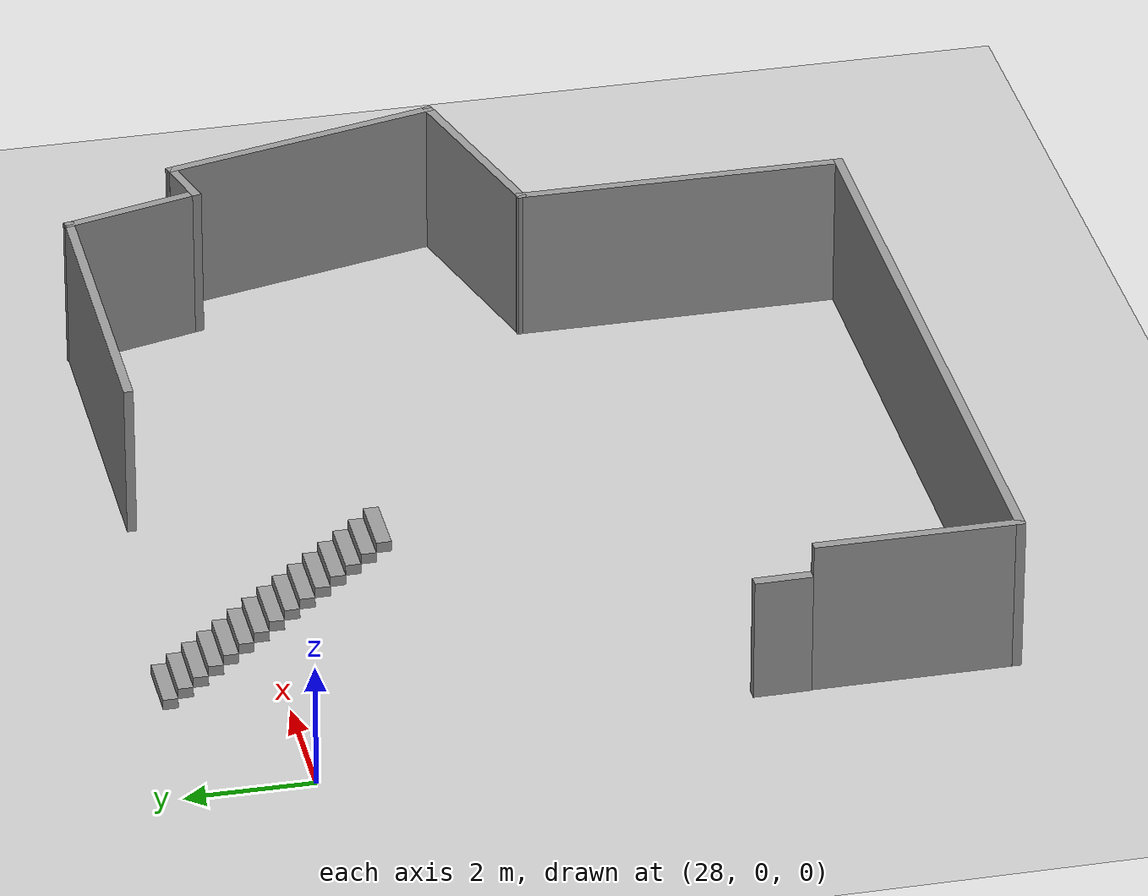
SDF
<sdf version="1.6">
 <world name="default">
  <model name="ground_plane">
   <static>1</static>
   <link name="link">
    <collision name="collision">
     <geometry><plane><normal>0 0 1</normal><size>100 100</size></plane></geometry>
     <surface>
      <contact><collide_bitmask>65535</collide_bitmask></contact>
      <friction><ode><mu>100</mu><mu2>50</mu2></ode></friction>
     </surface>
    </collision>
    <visual name="visual">
     <cast_shadows>0</cast_shadows>
     <geometry><plane><normal>0 0 1</normal><size>100 100</size></plane></geometry>
     <material>
      <script><uri>file://media/materials/scripts/gazebo.material</uri><name>Gazebo/Grey</name></script>
     </material>
    </visual>
   </link>
  </model>
  <model name="111A">
   <pose>36.1241 -4.73317 0 0 -0 0</pose>
   <link name="Door_1">
    <collision name="Door_1_Collision">
     <geometry><box><size>0.9 0.17 2</size></box></geometry>
     <pose>0 0 1 0 -0 0</pose>
    </collision>
    <visual name="Door_1_Visual">
     <pose>0 0 1 0 -0 0</pose>
     <geometry><box><size>0.9 0.17 2</size></box></geometry>
     <material>
      <script><uri>file://media/materials/scripts/gazebo.material</uri><name>Gazebo/Grey</name></script>
     </material>
    </visual>
    <pose>-7.13799 -2.54099 0 0 0 -1.56132</pose>
   </link>
   <link name="Wall_17">
    <collision name="Wall_17_Collision">
     <geometry><box><size>3.25 0.15 2.5</size></box></geometry>
     <pose>0 0 1.25 0 -0 0</pose>
    </collision>
    <visual name="Wall_17_Visual">
     <pose>0 0 1.25 0 -0 0</pose>
     <geometry><box><size>3.25 0.15 2.5</size></box></geometry>
     <material>
      <script><uri>file://media/materials/scripts/gazebo.material</uri><name>Gazebo/Grey</name></script>
      <ambient>1 1 1 1</ambient>
     </material>
     <meta><layer>0</layer></meta>
    </visual>
    <pose>-7.13342 -4.61905 0 0 -0 -1.5708</pose>
   </link>
   <link name="Wall_18">
    <collision name="Wall_18_Collision">
     <geometry><box><size>11.335 0.15 2.5</size></box></geometry>
     <pose>0 0 1.25 0 -0 0</pose>
    </collision>
    <visual name="Wall_18_Visual">
     <pose>0 0 1.25 0 -0 0</pose>
     <geometry><box><size>11.335 0.15 2.5</size></box></geometry>
     <material>
      <script><uri>file://media/materials/scripts/gazebo.material</uri><name>Gazebo/Grey</name></script>
      <ambient>1 1 1 1</ambient>
     </material>
     <meta><layer>0</layer></meta>
    </visual>
    <pose>-1.54142 -6.16905 0 0 -0 0</pose>
   </link>
   <link name="Wall_19">
    <collision name="Wall_19_Collision">
     <geometry><box><size>5.334 0.15 2.5</size></box></geometry>
     <pose>0 0 1.25 0 -0 0</pose>
    </collision>
    <visual name="Wall_19_Visual">
     <pose>0 0 1.25 0 -0 0</pose>
     <geometry><box><size>5.334 0.15 2.5</size></box></geometry>
     <material>
      <script><uri>file://media/materials/scripts/gazebo.material</uri><name>Gazebo/Grey</name></script>
      <ambient>1 1 1 1</ambient>
     </material>
     <meta><layer>0</layer></meta>
    </visual>
    <pose>4.05058 -3.57705 0 0 -0 1.5708</pose>
   </link>
   <link name="Wall_20">
    <collision name="Wall_20_Collision">
     <geometry><box><size>3.334 0.15 2.5</size></box></geometry>
     <pose>0 0 1.25 0 -0 0</pose>
    </collision>
    <visual name="Wall_20_Visual">
     <pose>0 0 1.25 0 -0 0</pose>
     <geometry><box><size>3.334 0.15 2.5</size></box></geometry>
     <material>
      <script><uri>file://media/materials/scripts/gazebo.material</uri><name>Gazebo/Grey</name></script>
      <ambient>1 1 1 1</ambient>
     </material>
     <meta><layer>0</layer></meta>
    </visual>
    <pose>5.58352 -0.555436 0 0 -0 0.273245</pose>
   </link>
   <link name="Wall_21">
    <collision name="Wall_21_Collision">
     <geometry><box><size>4.667 0.15 2.5</size></box></geometry>
     <pose>0 0 1.25 0 -0 0</pose>
    </collision>
    <visual name="Wall_21_Visual">
     <pose>0 0 1.25 0 -0 0</pose>
     <geometry><box><size>4.667 0.15 2.5</size></box></geometry>
     <material>
      <script><uri>file://media/materials/scripts/gazebo.material</uri><name>Gazebo/Grey</name></script>
      <ambient>1 1 1 1</ambient>
     </material>
     <meta><layer>0</layer></meta>
    </visual>
    <pose>6.58144 2.06839 0 0 -0 1.80996</pose>
   </link>
   <link name="Wall_22">
    <collision name="Wall_22_Collision">
     <geometry><box><size>1 0.15 2.5</size></box></geometry>
     <pose>0 0 1.25 0 -0 0</pose>
    </collision>
    <visual name="Wall_22_Visual">
     <pose>0 0 1.25 0 -0 0</pose>
     <geometry><box><size>1 0.15 2.5</size></box></geometry>
     <material>
      <script><uri>file://media/materials/scripts/gazebo.material</uri><name>Gazebo/Grey</name></script>
      <ambient>1 1 1 1</ambient>
     </material>
     <meta><layer>0</layer></meta>
    </visual>
    <pose>5.63591 4.15261 0 0 -0 -2.87979</pose>
   </link>
   <link name="Wall_23">
    <collision name="Wall_23_Collision">
     <geometry><box><size>2.334 0.15 2.5</size></box></geometry>
     <pose>0 0 1.25 0 -0 0</pose>
    </collision>
    <visual name="Wall_23_Visual">
     <pose>0 0 1.25 0 -0 0</pose>
     <geometry><box><size>2.334 0.15 2.5</size></box></geometry>
     <material>
      <script><uri>file://media/materials/scripts/gazebo.material</uri><name>Gazebo/Grey</name></script>
      <ambient>1 1 1 1</ambient>
     </material>
     <meta><layer>0</layer></meta>
    </visual>
    <pose>4.94276 5.0974 0 0 -0 1.8326</pose>
   </link>
   <link name="Wall_24">
    <collision name="Wall_24_Collision">
     <geometry><box><size>5.334 0.15 2.5</size></box></geometry>
     <pose>0 0 1.25 0 -0 0</pose>
    </collision>
    <visual name="Wall_24_Visual">
     <pose>0 0 1.25 0 -0 0</pose>
     <geometry><box><size>5.334 0.15 2.5</size></box></geometry>
     <material>
      <script><uri>file://media/materials/scripts/gazebo.material</uri><name>Gazebo/Grey</name></script>
      <ambient>1 1 1 1</ambient>
     </material>
     <meta><layer>0</layer></meta>
    </visual>
    <pose>2.06813 6.15219 0 0 -0 3.14159</pose>
   </link>
   <static>1</static>
  </model>
  <model name="Staircase1">
   <link name="Stairs_0">
    <visual name="Stairs_0_Visual_2">
     <pose>-1.16667 -0 0.416667 0 -0 1.5708</pose>
     <geometry><box><size>1 0.233333 0.166667</size></box></geometry>
     <material>
      <script><uri>file://media/materials/scripts/gazebo.material</uri><name>Gazebo/Grey</name></script>
      <ambient>1 1 1 1</ambient>
      <shader type="pixel"/>
     </material>
     <meta><layer>0</layer></meta>
    </visual>
    <visual name="Stairs_0_Visual_3">
     <pose>-0.933333 -0 0.583333 0 -0 1.5708</pose>
     <geometry><box><size>1 0.233333 0.166667</size></box></geometry>
     <material>
      <script><uri>file://media/materials/scripts/gazebo.material</uri><name>Gazebo/Grey</name></script>
      <ambient>1 1 1 1</ambient>
      <shader type="pixel"/>
     </material>
     <meta><layer>0</layer></meta>
    </visual>
    <visual name="Stairs_0_Visual_4">
     <pose>-0.7 0 0.75 0 -0 1.5708</pose>
     <geometry><box><size>1 0.233333 0.166667</size></box></geometry>
     <material>
      <script><uri>file://media/materials/scripts/gazebo.material</uri><name>Gazebo/Grey</name></script>
      <ambient>1 1 1 1</ambient>
      <shader type="pixel"/>
     </material>
     <meta><layer>0</layer></meta>
    </visual>
    <visual name="Stairs_0_Visual_5">
     <pose>-0.466667 0 0.916667 0 -0 1.5708</pose>
     <geometry><box><size>1 0.233333 0.166667</size></box></geometry>
     <material>
      <script><uri>file://media/materials/scripts/gazebo.material</uri><name>Gazebo/Grey</name></script>
      <ambient>1 1 1 1</ambient>
      <shader type="pixel"/>
     </material>
     <meta><layer>0</layer></meta>
    </visual>
    <visual name="Stairs_0_Visual_6">
     <pose>-0.233333 0 1.08333 0 -0 1.5708</pose>
     <geometry><box><size>1 0.233333 0.166667</size></box></geometry>
     <material>
      <script><uri>file://media/materials/scripts/gazebo.material</uri><name>Gazebo/Grey</name></script>
      <ambient>1 1 1 1</ambient>
      <shader type="pixel"/>
     </material>
     <meta><layer>0</layer></meta>
    </visual>
    <visual name="Stairs_0_Visual_7">
     <pose>0 0 1.25 0 -0 1.5708</pose>
     <geometry><box><size>1 0.233333 0.166667</size></box></geometry>
     <material>
      <script><uri>file://media/materials/scripts/gazebo.material</uri><name>Gazebo/Grey</name></script>
      <ambient>1 1 1 1</ambient>
      <shader type="pixel"/>
     </material>
     <meta><layer>0</layer></meta>
    </visual>
    <visual name="Stairs_0_Visual_8">
     <pose>0.233333 0 1.41667 0 -0 1.5708</pose>
     <geometry><box><size>1 0.233333 0.166667</size></box></geometry>
     <material>
      <script><uri>file://media/materials/scripts/gazebo.material</uri><name>Gazebo/Grey</name></script>
      <ambient>1 1 1 1</ambient>
      <shader type="pixel"/>
     </material>
     <meta><layer>0</layer></meta>
    </visual>
    <visual name="Stairs_0_Visual_9">
     <pose>0.466667 0 1.58333 0 -0 1.5708</pose>
     <geometry><box><size>1 0.233333 0.166667</size></box></geometry>
     <material>
      <script><uri>file://media/materials/scripts/gazebo.material</uri><name>Gazebo/Grey</name></script>
      <ambient>1 1 1 1</ambient>
      <shader type="pixel"/>
     </material>
     <meta><layer>0</layer></meta>
    </visual>
    <visual name="Stairs_0_Visual_10">
     <pose>0.7 0 1.75 0 -0 1.5708</pose>
     <geometry><box><size>1 0.233333 0.166667</size></box></geometry>
     <material>
      <script><uri>file://media/materials/scripts/gazebo.material</uri><name>Gazebo/Grey</name></script>
      <ambient>1 1 1 1</ambient>
      <shader type="pixel"/>
     </material>
     <meta><layer>0</layer></meta>
    </visual>
    <visual name="Stairs_0_Visual_11">
     <pose>0.933334 0 1.91667 0 -0 1.5708</pose>
     <geometry><box><size>1 0.233333 0.166667</size></box></geometry>
     <material>
      <script><uri>file://media/materials/scripts/gazebo.material</uri><name>Gazebo/Grey</name></script>
      <ambient>1 1 1 1</ambient>
      <shader type="pixel"/>
     </material>
     <meta><layer>0</layer></meta>
    </visual>
    <visual name="Stairs_0_Visual_12">
     <pose>1.16667 0 2.08333 0 -0 1.5708</pose>
     <geometry><box><size>1 0.233333 0.166667</size></box></geometry>
     <material>
      <script><uri>file://media/materials/scripts/gazebo.material</uri><name>Gazebo/Grey</name></script>
      <ambient>1 1 1 1</ambient>
      <shader type="pixel"/>
     </material>
     <meta><layer>0</layer></meta>
    </visual>
    <visual name="Stairs_0_Visual_13">
     <pose>1.4 0 2.25 0 -0 1.5708</pose>
     <geometry><box><size>1 0.233333 0.166667</size></box></geometry>
     <material>
      <script><uri>file://media/materials/scripts/gazebo.material</uri><name>Gazebo/Grey</name></script>
      <ambient>1 1 1 1</ambient>
      <shader type="pixel"/>
     </material>
     <meta><layer>0</layer></meta>
    </visual>
    <visual name="Stairs_0_Visual_14">
     <pose>1.63333 0 2.41667 0 -0 1.5708</pose>
     <geometry><box><size>1 0.233333 0.166667</size></box></geometry>
     <material>
      <script><uri>file://media/materials/scripts/gazebo.material</uri><name>Gazebo/Grey</name></script>
      <ambient>1 1 1 1</ambient>
      <shader type="pixel"/>
     </material>
     <meta><layer>0</layer></meta>
    </visual>
    <visual name="Stairs_0_Visual_0">
     <pose>-1.63333 -0 0.083333 0 -0 1.5708</pose>
     <geometry><box><size>1 0.233333 0.166667</size></box></geometry>
     <material>
      <script><uri>file://media/materials/scripts/gazebo.material</uri><name>Gazebo/Grey</name></script>
      <ambient>1 1 1 1</ambient>
      <shader type="pixel"/>
     </material>
     <meta><layer>0</layer></meta>
    </visual>
    <visual name="Stairs_0_Visual_1">
     <pose>-1.4 -0 0.25 0 -0 1.5708</pose>
     <geometry><box><size>1 0.233333 0.166667</size></box></geometry>
     <material>
      <script><uri>file://media/materials/scripts/gazebo.material</uri><name>Gazebo/Grey</name></script>
      <ambient>1 1 1 1</ambient>
      <shader type="pixel"/>
     </material>
     <meta><layer>0</layer></meta>
    </visual>
    <collision name="Stairs_0_Collision_0">
     <pose>-1.63333 0 0.083333 0 -0 1.5708</pose>
     <geometry><box><size>1 0.233333 0.166667</size></box></geometry>
     <surface>
      <friction>
       <ode><mu>1</mu><mu2>1</mu2><fdir1>0 0 0</fdir1><slip1>0</slip1><slip2>0</slip2></ode>
       <torsional>
        <coefficient>1</coefficient>
        <patch_radius>0</patch_radius>
        <surface_radius>0</surface_radius>
        <use_patch_radius>1</use_patch_radius>
        <ode><slip>0</slip></ode>
       </torsional>
      </friction>
      <bounce><restitution_coefficient>0</restitution_coefficient><threshold>1e+06</threshold></bounce>
      <contact>
       <collide_without_contact>0</collide_without_contact>
       <collide_without_contact_bitmask>1</collide_without_contact_bitmask>
       <collide_bitmask>1</collide_bitmask>
       <ode>
        <soft_cfm>0</soft_cfm>
        <soft_erp>0.2</soft_erp>
        <kp>1e+13</kp>
        <kd>1</kd>
        <max_vel>0.01</max_vel>
        <min_depth>0</min_depth>
       </ode>
       <bullet>
        <split_impulse>1</split_impulse>
        <split_impulse_penetration_threshold>-0.01</split_impulse_penetration_threshold>
        <soft_cfm>0</soft_cfm>
        <soft_erp>0.2</soft_erp>
        <kp>1e+13</kp>
        <kd>1</kd>
       </bullet>
      </contact>
     </surface>
    </collision>
    <collision name="Stairs_0_Collision_1">
     <pose>-1.4 0 0.25 0 -0 1.5708</pose>
     <geometry><box><size>1 0.233333 0.166667</size></box></geometry>
     <surface>
      <friction>
       <ode><mu>1</mu><mu2>1</mu2><fdir1>0 0 0</fdir1><slip1>0</slip1><slip2>0</slip2></ode>
       <torsional>
        <coefficient>1</coefficient>
        <patch_radius>0</patch_radius>
        <surface_radius>0</surface_radius>
        <use_patch_radius>1</use_patch_radius>
        <ode><slip>0</slip></ode>
       </torsional>
      </friction>
      <bounce><restitution_coefficient>0</restitution_coefficient><threshold>1e+06</threshold></bounce>
      <contact>
       <collide_without_contact>0</collide_without_contact>
       <collide_without_contact_bitmask>1</collide_without_contact_bitmask>
       <collide_bitmask>1</collide_bitmask>
       <ode>
        <soft_cfm>0</soft_cfm>
        <soft_erp>0.2</soft_erp>
        <kp>1e+13</kp>
        <kd>1</kd>
        <max_vel>0.01</max_vel>
        <min_depth>0</min_depth>
       </ode>
       <bullet>
        <split_impulse>1</split_impulse>
        <split_impulse_penetration_threshold>-0.01</split_impulse_penetration_threshold>
        <soft_cfm>0</soft_cfm>
        <soft_erp>0.2</soft_erp>
        <kp>1e+13</kp>
        <kd>1</kd>
       </bullet>
      </contact>
     </surface>
    </collision>
    <collision name="Stairs_0_Collision_2">
     <pose>-1.16667 0 0.416667 0 -0 1.5708</pose>
     <geometry><box><size>1 0.233333 0.166667</size></box></geometry>
     <surface>
      <friction>
       <ode><mu>1</mu><mu2>1</mu2><fdir1>0 0 0</fdir1><slip1>0</slip1><slip2>0</slip2></ode>
       <torsional>
        <coefficient>1</coefficient>
        <patch_radius>0</patch_radius>
        <surface_radius>0</surface_radius>
        <use_patch_radius>1</use_patch_radius>
        <ode><slip>0</slip></ode>
       </torsional>
      </friction>
      <bounce><restitution_coefficient>0</restitution_coefficient><threshold>1e+06</threshold></bounce>
      <contact>
       <collide_without_contact>0</collide_without_contact>
       <collide_without_contact_bitmask>1</collide_without_contact_bitmask>
       <collide_bitmask>1</collide_bitmask>
       <ode>
        <soft_cfm>0</soft_cfm>
        <soft_erp>0.2</soft_erp>
        <kp>1e+13</kp>
        <kd>1</kd>
        <max_vel>0.01</max_vel>
        <min_depth>0</min_depth>
       </ode>
       <bullet>
        <split_impulse>1</split_impulse>
        <split_impulse_penetration_threshold>-0.01</split_impulse_penetration_threshold>
        <soft_cfm>0</soft_cfm>
        <soft_erp>0.2</soft_erp>
        <kp>1e+13</kp>
        <kd>1</kd>
       </bullet>
      </contact>
     </surface>
    </collision>
    <collision name="Stairs_0_Collision_3">
     <pose>-0.933333 0 0.583333 0 -0 1.5708</pose>
     <geometry><box><size>1 0.233333 0.166667</size></box></geometry>
     <surface>
      <friction>
       <ode><mu>1</mu><mu2>1</mu2><fdir1>0 0 0</fdir1><slip1>0</slip1><slip2>0</slip2></ode>
       <torsional>
        <coefficient>1</coefficient>
        <patch_radius>0</patch_radius>
        <surface_radius>0</surface_radius>
        <use_patch_radius>1</use_patch_radius>
        <ode><slip>0</slip></ode>
       </torsional>
      </friction>
      <bounce><restitution_coefficient>0</restitution_coefficient><threshold>1e+06</threshold></bounce>
      <contact>
       <collide_without_contact>0</collide_without_contact>
       <collide_without_contact_bitmask>1</collide_without_contact_bitmask>
       <collide_bitmask>1</collide_bitmask>
       <ode>
        <soft_cfm>0</soft_cfm>
        <soft_erp>0.2</soft_erp>
        <kp>1e+13</kp>
        <kd>1</kd>
        <max_vel>0.01</max_vel>
        <min_depth>0</min_depth>
       </ode>
       <bullet>
        <split_impulse>1</split_impulse>
        <split_impulse_penetration_threshold>-0.01</split_impulse_penetration_threshold>
        <soft_cfm>0</soft_cfm>
        <soft_erp>0.2</soft_erp>
        <kp>1e+13</kp>
        <kd>1</kd>
       </bullet>
      </contact>
     </surface>
    </collision>
    <collision name="Stairs_0_Collision_4">
     <pose>-0.7 0 0.75 0 -0 1.5708</pose>
     <geometry><box><size>1 0.233333 0.166667</size></box></geometry>
     <surface>
      <friction>
       <ode><mu>1</mu><mu2>1</mu2><fdir1>0 0 0</fdir1><slip1>0</slip1><slip2>0</slip2></ode>
       <torsional>
        <coefficient>1</coefficient>
        <patch_radius>0</patch_radius>
        <surface_radius>0</surface_radius>
        <use_patch_radius>1</use_patch_radius>
        <ode><slip>0</slip></ode>
       </torsional>
      </friction>
      <bounce><restitution_coefficient>0</restitution_coefficient><threshold>1e+06</threshold></bounce>
      <contact>
       <collide_without_contact>0</collide_without_contact>
       <collide_without_contact_bitmask>1</collide_without_contact_bitmask>
       <collide_bitmask>1</collide_bitmask>
       <ode>
        <soft_cfm>0</soft_cfm>
        <soft_erp>0.2</soft_erp>
        <kp>1e+13</kp>
        <kd>1</kd>
        <max_vel>0.01</max_vel>
        <min_depth>0</min_depth>
       </ode>
       <bullet>
        <split_impulse>1</split_impulse>
        <split_impulse_penetration_threshold>-0.01</split_impulse_penetration_threshold>
        <soft_cfm>0</soft_cfm>
        <soft_erp>0.2</soft_erp>
        <kp>1e+13</kp>
        <kd>1</kd>
       </bullet>
      </contact>
     </surface>
    </collision>
    <collision name="Stairs_0_Collision_5">
     <pose>-0.466667 0 0.916667 0 -0 1.5708</pose>
     <geometry><box><size>1 0.233333 0.166667</size></box></geometry>
     <surface>
      <friction>
       <ode><mu>1</mu><mu2>1</mu2><fdir1>0 0 0</fdir1><slip1>0</slip1><slip2>0</slip2></ode>
       <torsional>
        <coefficient>1</coefficient>
        <patch_radius>0</patch_radius>
        <surface_radius>0</surface_radius>
        <use_patch_radius>1</use_patch_radius>
        <ode><slip>0</slip></ode>
       </torsional>
      </friction>
      <bounce><restitution_coefficient>0</restitution_coefficient><threshold>1e+06</threshold></bounce>
      <contact>
       <collide_without_contact>0</collide_without_contact>
       <collide_without_contact_bitmask>1</collide_without_contact_bitmask>
       <collide_bitmask>1</collide_bitmask>
       <ode>
        <soft_cfm>0</soft_cfm>
        <soft_erp>0.2</soft_erp>
        <kp>1e+13</kp>
        <kd>1</kd>
        <max_vel>0.01</max_vel>
        <min_depth>0</min_depth>
       </ode>
       <bullet>
        <split_impulse>1</split_impulse>
        <split_impulse_penetration_threshold>-0.01</split_impulse_penetration_threshold>
        <soft_cfm>0</soft_cfm>
        <soft_erp>0.2</soft_erp>
        <kp>1e+13</kp>
        <kd>1</kd>
       </bullet>
      </contact>
     </surface>
    </collision>
    <collision name="Stairs_0_Collision_6">
     <pose>-0.233333 0 1.08333 0 -0 1.5708</pose>
     <geometry><box><size>1 0.233333 0.166667</size></box></geometry>
     <surface>
      <friction>
       <ode><mu>1</mu><mu2>1</mu2><fdir1>0 0 0</fdir1><slip1>0</slip1><slip2>0</slip2></ode>
       <torsional>
        <coefficient>1</coefficient>
        <patch_radius>0</patch_radius>
        <surface_radius>0</surface_radius>
        <use_patch_radius>1</use_patch_radius>
        <ode><slip>0</slip></ode>
       </torsional>
      </friction>
      <bounce><restitution_coefficient>0</restitution_coefficient><threshold>1e+06</threshold></bounce>
      <contact>
       <collide_without_contact>0</collide_without_contact>
       <collide_without_contact_bitmask>1</collide_without_contact_bitmask>
       <collide_bitmask>1</collide_bitmask>
       <ode>
        <soft_cfm>0</soft_cfm>
        <soft_erp>0.2</soft_erp>
        <kp>1e+13</kp>
        <kd>1</kd>
        <max_vel>0.01</max_vel>
        <min_depth>0</min_depth>
       </ode>
       <bullet>
        <split_impulse>1</split_impulse>
        <split_impulse_penetration_threshold>-0.01</split_impulse_penetration_threshold>
        <soft_cfm>0</soft_cfm>
        <soft_erp>0.2</soft_erp>
        <kp>1e+13</kp>
        <kd>1</kd>
       </bullet>
      </contact>
     </surface>
    </collision>
    <collision name="Stairs_0_Collision_7">
     <pose>0 0 1.25 0 -0 1.5708</pose>
     <geometry><box><size>1 0.233333 0.166667</size></box></geometry>
     <surface>
      <friction>
       <ode><mu>1</mu><mu2>1</mu2><fdir1>0 0 0</fdir1><slip1>0</slip1><slip2>0</slip2></ode>
       <torsional>
        <coefficient>1</coefficient>
        <patch_radius>0</patch_radius>
        <surface_radius>0</surface_radius>
        <use_patch_radius>1</use_patch_radius>
        <ode><slip>0</slip></ode>
       </torsional>
      </friction>
      <bounce><restitution_coefficient>0</restitution_coefficient><threshold>1e+06</threshold></bounce>
      <contact>
       <collide_without_contact>0</collide_without_contact>
       <collide_without_contact_bitmask>1</collide_without_contact_bitmask>
       <collide_bitmask>1</collide_bitmask>
       <ode>
        <soft_cfm>0</soft_cfm>
        <soft_erp>0.2</soft_erp>
        <kp>1e+13</kp>
        <kd>1</kd>
        <max_vel>0.01</max_vel>
        <min_depth>0</min_depth>
       </ode>
       <bullet>
        <split_impulse>1</split_impulse>
        <split_impulse_penetration_threshold>-0.01</split_impulse_penetration_threshold>
        <soft_cfm>0</soft_cfm>
        <soft_erp>0.2</soft_erp>
        <kp>1e+13</kp>
        <kd>1</kd>
       </bullet>
      </contact>
     </surface>
    </collision>
    <collision name="Stairs_0_Collision_8">
     <pose>0.233333 0 1.41667 0 -0 1.5708</pose>
     <geometry><box><size>1 0.233333 0.166667</size></box></geometry>
     <surface>
      <friction>
       <ode><mu>1</mu><mu2>1</mu2><fdir1>0 0 0</fdir1><slip1>0</slip1><slip2>0</slip2></ode>
       <torsional>
        <coefficient>1</coefficient>
        <patch_radius>0</patch_radius>
        <surface_radius>0</surface_radius>
        <use_patch_radius>1</use_patch_radius>
        <ode><slip>0</slip></ode>
       </torsional>
      </friction>
      <bounce><restitution_coefficient>0</restitution_coefficient><threshold>1e+06</threshold></bounce>
      <contact>
       <collide_without_contact>0</collide_without_contact>
       <collide_without_contact_bitmask>1</collide_without_contact_bitmask>
       <collide_bitmask>1</collide_bitmask>
       <ode>
        <soft_cfm>0</soft_cfm>
        <soft_erp>0.2</soft_erp>
        <kp>1e+13</kp>
        <kd>1</kd>
        <max_vel>0.01</max_vel>
        <min_depth>0</min_depth>
       </ode>
       <bullet>
        <split_impulse>1</split_impulse>
        <split_impulse_penetration_threshold>-0.01</split_impulse_penetration_threshold>
        <soft_cfm>0</soft_cfm>
        <soft_erp>0.2</soft_erp>
        <kp>1e+13</kp>
        <kd>1</kd>
       </bullet>
      </contact>
     </surface>
    </collision>
    <collision name="Stairs_0_Collision_9">
     <pose>0.466667 0 1.58333 0 -0 1.5708</pose>
     <geometry><box><size>1 0.233333 0.166667</size></box></geometry>
     <surface>
      <friction>
       <ode><mu>1</mu><mu2>1</mu2><fdir1>0 0 0</fdir1><slip1>0</slip1><slip2>0</slip2></ode>
       <torsional>
        <coefficient>1</coefficient>
        <patch_radius>0</patch_radius>
        <surface_radius>0</surface_radius>
        <use_patch_radius>1</use_patch_radius>
        <ode><slip>0</slip></ode>
       </torsional>
      </friction>
      <bounce><restitution_coefficient>0</restitution_coefficient><threshold>1e+06</threshold></bounce>
      <contact>
       <collide_without_contact>0</collide_without_contact>
       <collide_without_contact_bitmask>1</collide_without_contact_bitmask>
       <collide_bitmask>1</collide_bitmask>
       <ode>
        <soft_cfm>0</soft_cfm>
        <soft_erp>0.2</soft_erp>
        <kp>1e+13</kp>
        <kd>1</kd>
        <max_vel>0.01</max_vel>
        <min_depth>0</min_depth>
       </ode>
       <bullet>
        <split_impulse>1</split_impulse>
        <split_impulse_penetration_threshold>-0.01</split_impulse_penetration_threshold>
        <soft_cfm>0</soft_cfm>
        <soft_erp>0.2</soft_erp>
        <kp>1e+13</kp>
        <kd>1</kd>
       </bullet>
      </contact>
     </surface>
    </collision>
    <collision name="Stairs_0_Collision_10">
     <pose>0.7 0 1.75 0 -0 1.5708</pose>
     <geometry><box><size>1 0.233333 0.166667</size></box></geometry>
     <surface>
      <friction>
       <ode><mu>1</mu><mu2>1</mu2><fdir1>0 0 0</fdir1><slip1>0</slip1><slip2>0</slip2></ode>
       <torsional>
        <coefficient>1</coefficient>
        <patch_radius>0</patch_radius>
        <surface_radius>0</surface_radius>
        <use_patch_radius>1</use_patch_radius>
        <ode><slip>0</slip></ode>
       </torsional>
      </friction>
      <bounce><restitution_coefficient>0</restitution_coefficient><threshold>1e+06</threshold></bounce>
      <contact>
       <collide_without_contact>0</collide_without_contact>
       <collide_without_contact_bitmask>1</collide_without_contact_bitmask>
       <collide_bitmask>1</collide_bitmask>
       <ode>
        <soft_cfm>0</soft_cfm>
        <soft_erp>0.2</soft_erp>
        <kp>1e+13</kp>
        <kd>1</kd>
        <max_vel>0.01</max_vel>
        <min_depth>0</min_depth>
       </ode>
       <bullet>
        <split_impulse>1</split_impulse>
        <split_impulse_penetration_threshold>-0.01</split_impulse_penetration_threshold>
        <soft_cfm>0</soft_cfm>
        <soft_erp>0.2</soft_erp>
        <kp>1e+13</kp>
        <kd>1</kd>
       </bullet>
      </contact>
     </surface>
    </collision>
    <collision name="Stairs_0_Collision_11">
     <pose>0.933334 0 1.91667 0 -0 1.5708</pose>
     <geometry><box><size>1 0.233333 0.166667</size></box></geometry>
     <surface>
      <friction>
       <ode><mu>1</mu><mu2>1</mu2><fdir1>0 0 0</fdir1><slip1>0</slip1><slip2>0</slip2></ode>
       <torsional>
        <coefficient>1</coefficient>
        <patch_radius>0</patch_radius>
        <surface_radius>0</surface_radius>
        <use_patch_radius>1</use_patch_radius>
        <ode><slip>0</slip></ode>
       </torsional>
      </friction>
      <bounce><restitution_coefficient>0</restitution_coefficient><threshold>1e+06</threshold></bounce>
      <contact>
       <collide_without_contact>0</collide_without_contact>
       <collide_without_contact_bitmask>1</collide_without_contact_bitmask>
       <collide_bitmask>1</collide_bitmask>
       <ode>
        <soft_cfm>0</soft_cfm>
        <soft_erp>0.2</soft_erp>
        <kp>1e+13</kp>
        <kd>1</kd>
        <max_vel>0.01</max_vel>
        <min_depth>0</min_depth>
       </ode>
       <bullet>
        <split_impulse>1</split_impulse>
        <split_impulse_penetration_threshold>-0.01</split_impulse_penetration_threshold>
        <soft_cfm>0</soft_cfm>
        <soft_erp>0.2</soft_erp>
        <kp>1e+13</kp>
        <kd>1</kd>
       </bullet>
      </contact>
     </surface>
    </collision>
    <collision name="Stairs_0_Collision_12">
     <pose>1.16667 0 2.08333 0 -0 1.5708</pose>
     <geometry><box><size>1 0.233333 0.166667</size></box></geometry>
     <surface>
      <friction>
       <ode><mu>1</mu><mu2>1</mu2><fdir1>0 0 0</fdir1><slip1>0</slip1><slip2>0</slip2></ode>
       <torsional>
        <coefficient>1</coefficient>
        <patch_radius>0</patch_radius>
        <surface_radius>0</surface_radius>
        <use_patch_radius>1</use_patch_radius>
        <ode><slip>0</slip></ode>
       </torsional>
      </friction>
      <bounce><restitution_coefficient>0</restitution_coefficient><threshold>1e+06</threshold></bounce>
      <contact>
       <collide_without_contact>0</collide_without_contact>
       <collide_without_contact_bitmask>1</collide_without_contact_bitmask>
       <collide_bitmask>1</collide_bitmask>
       <ode>
        <soft_cfm>0</soft_cfm>
        <soft_erp>0.2</soft_erp>
        <kp>1e+13</kp>
        <kd>1</kd>
        <max_vel>0.01</max_vel>
        <min_depth>0</min_depth>
       </ode>
       <bullet>
        <split_impulse>1</split_impulse>
        <split_impulse_penetration_threshold>-0.01</split_impulse_penetration_threshold>
        <soft_cfm>0</soft_cfm>
        <soft_erp>0.2</soft_erp>
        <kp>1e+13</kp>
        <kd>1</kd>
       </bullet>
      </contact>
     </surface>
    </collision>
    <collision name="Stairs_0_Collision_13">
     <pose>1.4 0 2.25 0 -0 1.5708</pose>
     <geometry><box><size>1 0.233333 0.166667</size></box></geometry>
     <surface>
      <friction>
       <ode><mu>1</mu><mu2>1</mu2><fdir1>0 0 0</fdir1><slip1>0</slip1><slip2>0</slip2></ode>
       <torsional>
        <coefficient>1</coefficient>
        <patch_radius>0</patch_radius>
        <surface_radius>0</surface_radius>
        <use_patch_radius>1</use_patch_radius>
        <ode><slip>0</slip></ode>
       </torsional>
      </friction>
      <bounce><restitution_coefficient>0</restitution_coefficient><threshold>1e+06</threshold></bounce>
      <contact>
       <collide_without_contact>0</collide_without_contact>
       <collide_without_contact_bitmask>1</collide_without_contact_bitmask>
       <collide_bitmask>1</collide_bitmask>
       <ode>
        <soft_cfm>0</soft_cfm>
        <soft_erp>0.2</soft_erp>
        <kp>1e+13</kp>
        <kd>1</kd>
        <max_vel>0.01</max_vel>
        <min_depth>0</min_depth>
       </ode>
       <bullet>
        <split_impulse>1</split_impulse>
        <split_impulse_penetration_threshold>-0.01</split_impulse_penetration_threshold>
        <soft_cfm>0</soft_cfm>
        <soft_erp>0.2</soft_erp>
        <kp>1e+13</kp>
        <kd>1</kd>
       </bullet>
      </contact>
     </surface>
    </collision>
    <collision name="Stairs_0_Collision_14">
     <pose>1.63333 0 2.41667 0 -0 1.5708</pose>
     <geometry><box><size>1 0.233333 0.166667</size></box></geometry>
     <surface>
      <friction>
       <ode><mu>1</mu><mu2>1</mu2><fdir1>0 0 0</fdir1><slip1>0</slip1><slip2>0</slip2></ode>
       <torsional>
        <coefficient>1</coefficient>
        <patch_radius>0</patch_radius>
        <surface_radius>0</surface_radius>
        <use_patch_radius>1</use_patch_radius>
        <ode><slip>0</slip></ode>
       </torsional>
      </friction>
      <bounce><restitution_coefficient>0</restitution_coefficient><threshold>1e+06</threshold></bounce>
      <contact>
       <collide_without_contact>0</collide_without_contact>
       <collide_without_contact_bitmask>1</collide_without_contact_bitmask>
       <collide_bitmask>1</collide_bitmask>
       <ode>
        <soft_cfm>0</soft_cfm>
        <soft_erp>0.2</soft_erp>
        <kp>1e+13</kp>
        <kd>1</kd>
        <max_vel>0.01</max_vel>
        <min_depth>0</min_depth>
       </ode>
       <bullet>
        <split_impulse>1</split_impulse>
        <split_impulse_penetration_threshold>-0.01</split_impulse_penetration_threshold>
        <soft_cfm>0</soft_cfm>
        <soft_erp>0.2</soft_erp>
        <kp>1e+13</kp>
        <kd>1</kd>
       </bullet>
      </contact>
     </surface>
    </collision>
   </link>
   <static>1</static>
   <pose>30.94 0.108702 0 0 0 -1.57288</pose>
  </model>
 </world>
</sdf>
